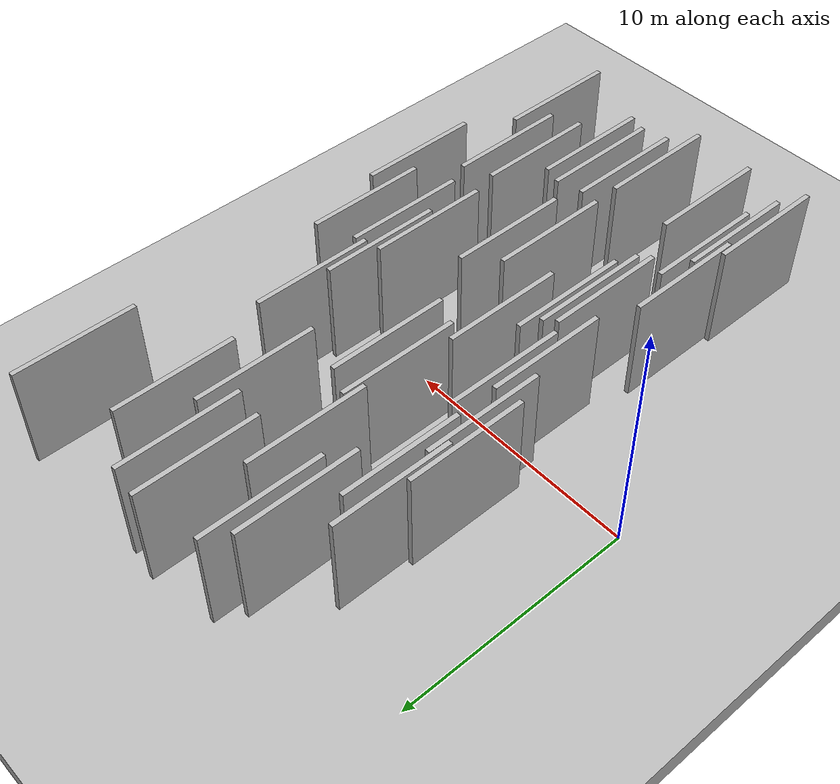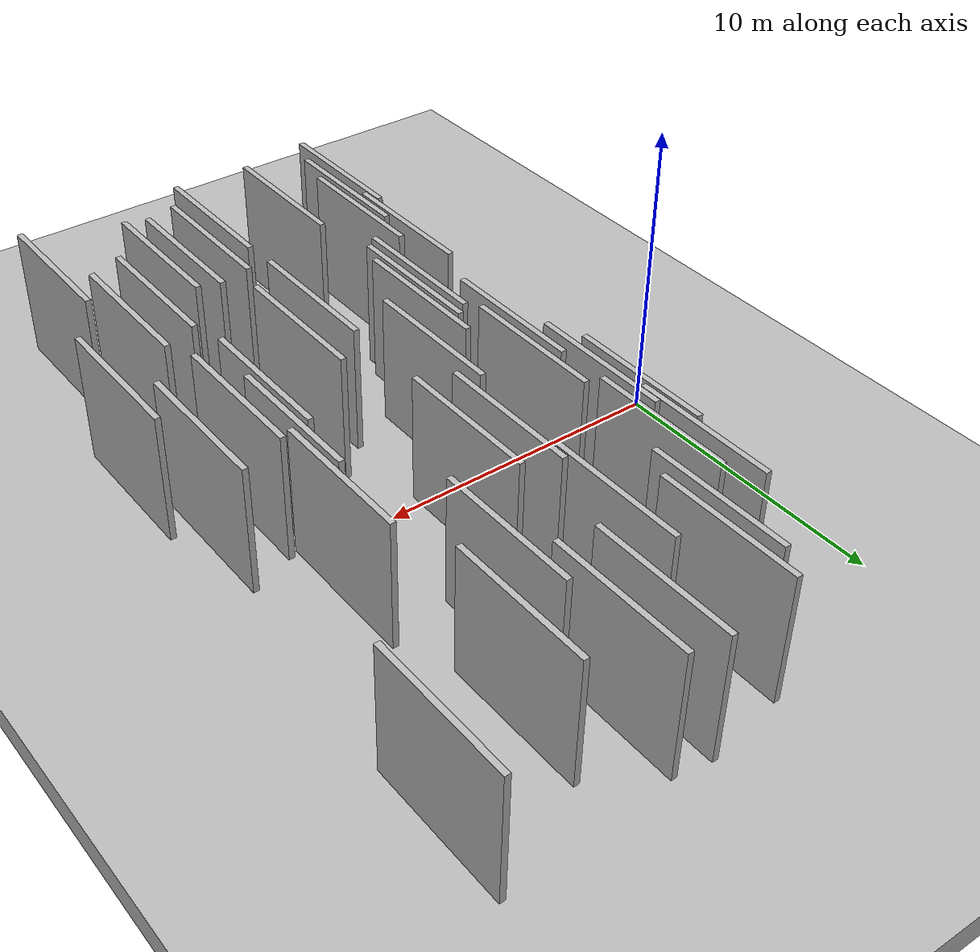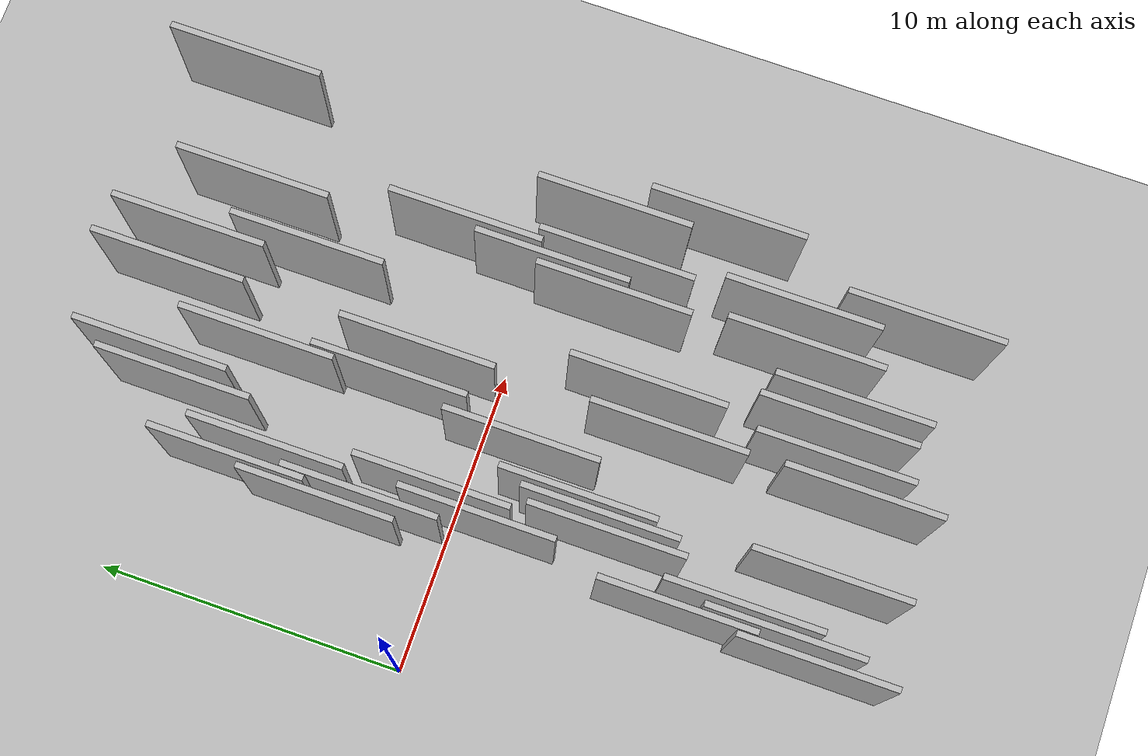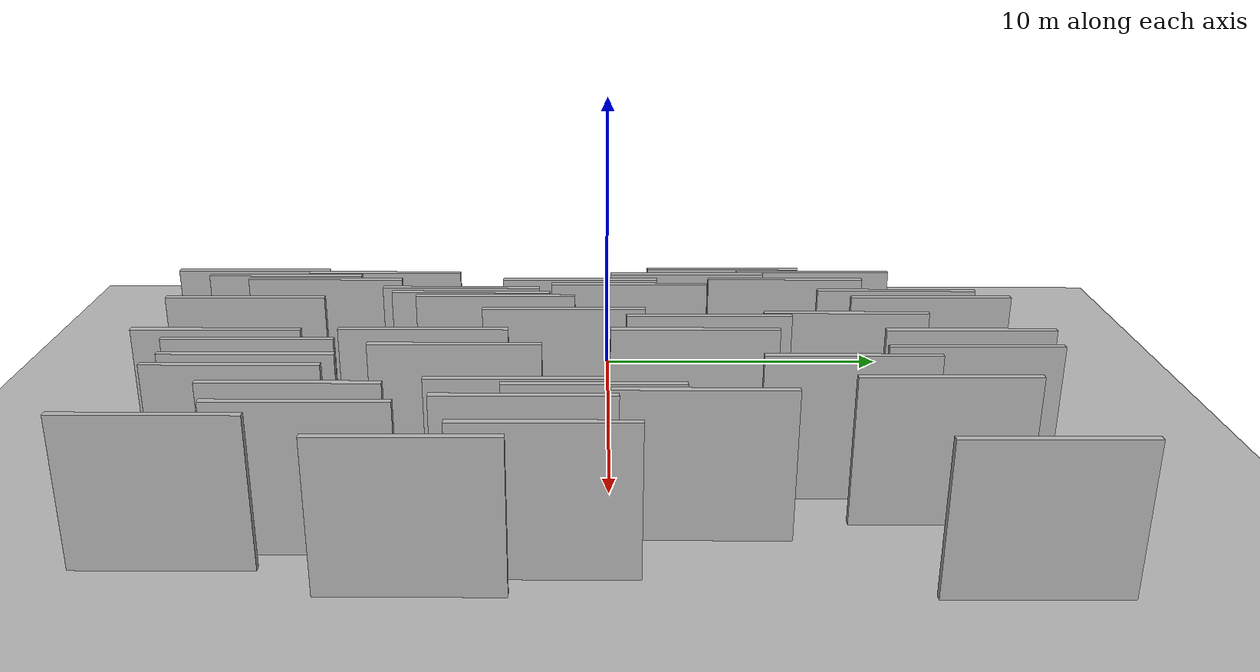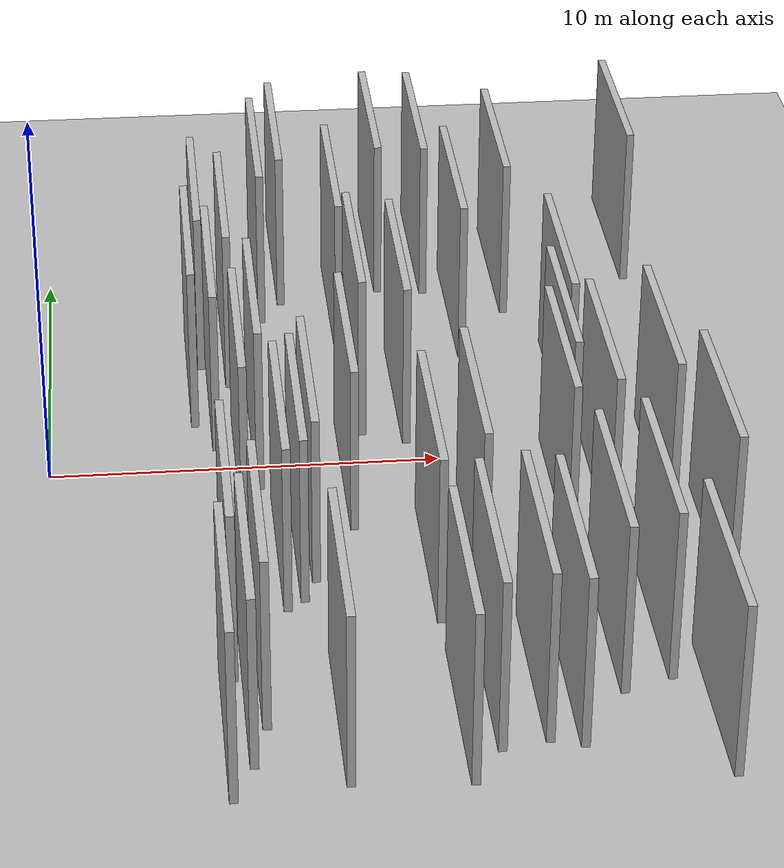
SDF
<?xml version="1.0" encoding="utf-8"?>

<sdf version="1.6">

   <world name="default">

      <gui fullscreen="0">

         <camera name="user_camera">

            <pose>-15 0 4.57585 0 0 0</pose>

            <view_controller>orbit</view_controller>

         </camera>

      </gui>

      <scene>

         <sky>

           <clouds>

             <speed>12</speed>

           </clouds>

         </sky>

         <ambient>0.4 0.4 0.4 1</ambient>

         <background>0.7 0.7 0.7 1</background>

         <shadows>1</shadows>

      </scene>

      <gravity>0 0 -9.8066</gravity>

      <magnetic_field>6e-06 2.3e-05 -4.2e-05</magnetic_field>

      <physics default="0" name="default_physics" type="ode">

         <ode>

            <solver>

               <type>quick</type>

               <iters>10</iters>

               <sor>1.0</sor>

               <use_dynamic_moi_rescaling>0</use_dynamic_moi_rescaling>

            </solver>

            <constraints>

               <cfm>0</cfm>

               <erp>0.2</erp>

               <contact_max_correcting_vel>100</contact_max_correcting_vel>

               <contact_surface_layer>0.001</contact_surface_layer>

            </constraints>

         </ode>

         <max_step_size>0.004</max_step_size>

         <real_time_factor>1</real_time_factor>

         <real_time_update_rate>250</real_time_update_rate>

      </physics>

      <light name="sun" type="directional">

         <cast_shadows>1</cast_shadows>

         <pose>0 0 10 0 0 0</pose>

         <diffuse>0.8 0.8 0.8 1</diffuse>

         <specular>0.2 0.2 0.2 1</specular>

         <attenuation>

            <range>1000</range>

            <constant>0.9</constant>

            <linear>0.01</linear>

            <quadratic>0.001</quadratic>

         </attenuation>

         <direction>-0.5 0.1 -0.9</direction>

      </light>

      <include>

         <name>ground_plane_1</name>

         <uri>model://HANNAS_ground_plane</uri>

         <pose>0 0 0  0 0 0</pose>

      </include>

      <include>

         <name>ground_plane_2</name>

         <uri>model://HANNAS_ground_plane</uri>

         <pose>100 0 0  0 0 0</pose>

      </include>

      <model name="HANNAS_wall_1">

         <static>1</static>

         <pose frame="">16.1890 10.7749 0.0 0.000000 0.000000 1.570796</pose>

         <link name="link">

            <pose frame="">0 0 2.50 0 0 0</pose>

            <collision name="collision">

               <geometry>

                  <box>

                     <size>5.00 0.2 5.00</size>

                  </box>

               </geometry>

               <max_contacts>10</max_contacts>

               <surface>

                  <contact>

                     <ode/>

                  </contact>

                  <bounce/>

                  <friction>

                     <torsional>

                        <ode/>

                     </torsional>

                     <ode/>

                  </friction>

               </surface>

            </collision>

            <visual name="visual">

               <cast_shadows>0</cast_shadows>

               <geometry>

                  <box>

                     <size>5.00 0.2 5.00</size>

                  </box>

               </geometry>

               <material>

                  <script>

                     <uri>model://HANNAS_wall/materials/scripts</uri>

                     <uri>model://HANNAS_wall/materials/textures</uri>

                     <name>vrc/HANNAS_wall</name>

                  </script>

               </material>

            </visual>

            <self_collide>0</self_collide>

            <enable_wind>0</enable_wind>

            <kinematic>0</kinematic>

         </link>

      </model>

      <model name="HANNAS_wall_2">

         <static>1</static>

         <pose frame="">4.4902 -10.6086 0.0 0.000000 0.000000 1.570796</pose>

         <link name="link">

            <pose frame="">0 0 2.50 0 0 0</pose>

            <collision name="collision">

               <geometry>

                  <box>

                     <size>5.00 0.2 5.00</size>

                  </box>

               </geometry>

               <max_contacts>10</max_contacts>

               <surface>

                  <contact>

                     <ode/>

                  </contact>

                  <bounce/>

                  <friction>

                     <torsional>

                        <ode/>

                     </torsional>

                     <ode/>

                  </friction>

               </surface>

            </collision>

            <visual name="visual">

               <cast_shadows>0</cast_shadows>

               <geometry>

                  <box>

                     <size>5.00 0.2 5.00</size>

                  </box>

               </geometry>

               <material>

                  <script>

                     <uri>model://HANNAS_wall/materials/scripts</uri>

                     <uri>model://HANNAS_wall/materials/textures</uri>

                     <name>vrc/HANNAS_wall</name>

                  </script>

               </material>

            </visual>

            <self_collide>0</self_collide>

            <enable_wind>0</enable_wind>

            <kinematic>0</kinematic>

         </link>

      </model>

      <model name="HANNAS_wall_3">

         <static>1</static>

         <pose frame="">5.2921 0.6594 0.0 0.000000 0.000000 1.570796</pose>

         <link name="link">

            <pose frame="">0 0 2.50 0 0 0</pose>

            <collision name="collision">

               <geometry>

                  <box>

                     <size>5.00 0.2 5.00</size>

                  </box>

               </geometry>

               <max_contacts>10</max_contacts>

               <surface>

                  <contact>

                     <ode/>

                  </contact>

                  <bounce/>

                  <friction>

                     <torsional>

                        <ode/>

                     </torsional>

                     <ode/>

                  </friction>

               </surface>

            </collision>

            <visual name="visual">

               <cast_shadows>0</cast_shadows>

               <geometry>

                  <box>

                     <size>5.00 0.2 5.00</size>

                  </box>

               </geometry>

               <material>

                  <script>

                     <uri>model://HANNAS_wall/materials/scripts</uri>

                     <uri>model://HANNAS_wall/materials/textures</uri>

                     <name>vrc/HANNAS_wall</name>

                  </script>

               </material>

            </visual>

            <self_collide>0</self_collide>

            <enable_wind>0</enable_wind>

            <kinematic>0</kinematic>

         </link>

      </model>

      <model name="HANNAS_wall_4">

         <static>1</static>

         <pose frame="">3.9765 -11.7565 0.0 0.000000 0.000000 1.570796</pose>

         <link name="link">

            <pose frame="">0 0 2.50 0 0 0</pose>

            <collision name="collision">

               <geometry>

                  <box>

                     <size>5.00 0.2 5.00</size>

                  </box>

               </geometry>

               <max_contacts>10</max_contacts>

               <surface>

                  <contact>

                     <ode/>

                  </contact>

                  <bounce/>

                  <friction>

                     <torsional>

                        <ode/>

                     </torsional>

                     <ode/>

                  </friction>

               </surface>

            </collision>

            <visual name="visual">

               <cast_shadows>0</cast_shadows>

               <geometry>

                  <box>

                     <size>5.00 0.2 5.00</size>

                  </box>

               </geometry>

               <material>

                  <script>

                     <uri>model://HANNAS_wall/materials/scripts</uri>

                     <uri>model://HANNAS_wall/materials/textures</uri>

                     <name>vrc/HANNAS_wall</name>

                  </script>

               </material>

            </visual>

            <self_collide>0</self_collide>

            <enable_wind>0</enable_wind>

            <kinematic>0</kinematic>

         </link>

      </model>

      <model name="HANNAS_wall_5">

         <static>1</static>

         <pose frame="">4.2835 2.5784 0.0 0.000000 0.000000 1.570796</pose>

         <link name="link">

            <pose frame="">0 0 2.50 0 0 0</pose>

            <collision name="collision">

               <geometry>

                  <box>

                     <size>5.00 0.2 5.00</size>

                  </box>

               </geometry>

               <max_contacts>10</max_contacts>

               <surface>

                  <contact>

                     <ode/>

                  </contact>

                  <bounce/>

                  <friction>

                     <torsional>

                        <ode/>

                     </torsional>

                     <ode/>

                  </friction>

               </surface>

            </collision>

            <visual name="visual">

               <cast_shadows>0</cast_shadows>

               <geometry>

                  <box>

                     <size>5.00 0.2 5.00</size>

                  </box>

               </geometry>

               <material>

                  <script>

                     <uri>model://HANNAS_wall/materials/scripts</uri>

                     <uri>model://HANNAS_wall/materials/textures</uri>

                     <name>vrc/HANNAS_wall</name>

                  </script>

               </material>

            </visual>

            <self_collide>0</self_collide>

            <enable_wind>0</enable_wind>

            <kinematic>0</kinematic>

         </link>

      </model>

      <model name="HANNAS_wall_6">

         <static>1</static>

         <pose frame="">3.7852 3.7944 0.0 0.000000 0.000000 1.570796</pose>

         <link name="link">

            <pose frame="">0 0 2.50 0 0 0</pose>

            <collision name="collision">

               <geometry>

                  <box>

                     <size>5.00 0.2 5.00</size>

                  </box>

               </geometry>

               <max_contacts>10</max_contacts>

               <surface>

                  <contact>

                     <ode/>

                  </contact>

                  <bounce/>

                  <friction>

                     <torsional>

                        <ode/>

                     </torsional>

                     <ode/>

                  </friction>

               </surface>

            </collision>

            <visual name="visual">

               <cast_shadows>0</cast_shadows>

               <geometry>

                  <box>

                     <size>5.00 0.2 5.00</size>

                  </box>

               </geometry>

               <material>

                  <script>

                     <uri>model://HANNAS_wall/materials/scripts</uri>

                     <uri>model://HANNAS_wall/materials/textures</uri>

                     <name>vrc/HANNAS_wall</name>

                  </script>

               </material>

            </visual>

            <self_collide>0</self_collide>

            <enable_wind>0</enable_wind>

            <kinematic>0</kinematic>

         </link>

      </model>

      <model name="HANNAS_wall_7">

         <static>1</static>

         <pose frame="">11.0615 -10.2280 0.0 0.000000 0.000000 1.570796</pose>

         <link name="link">

            <pose frame="">0 0 2.50 0 0 0</pose>

            <collision name="collision">

               <geometry>

                  <box>

                     <size>5.00 0.2 5.00</size>

                  </box>

               </geometry>

               <max_contacts>10</max_contacts>

               <surface>

                  <contact>

                     <ode/>

                  </contact>

                  <bounce/>

                  <friction>

                     <torsional>

                        <ode/>

                     </torsional>

                     <ode/>

                  </friction>

               </surface>

            </collision>

            <visual name="visual">

               <cast_shadows>0</cast_shadows>

               <geometry>

                  <box>

                     <size>5.00 0.2 5.00</size>

                  </box>

               </geometry>

               <material>

                  <script>

                     <uri>model://HANNAS_wall/materials/scripts</uri>

                     <uri>model://HANNAS_wall/materials/textures</uri>

                     <name>vrc/HANNAS_wall</name>

                  </script>

               </material>

            </visual>

            <self_collide>0</self_collide>

            <enable_wind>0</enable_wind>

            <kinematic>0</kinematic>

         </link>

      </model>

      <model name="HANNAS_wall_8">

         <static>1</static>

         <pose frame="">6.3820 -3.5713 0.0 0.000000 0.000000 1.570796</pose>

         <link name="link">

            <pose frame="">0 0 2.50 0 0 0</pose>

            <collision name="collision">

               <geometry>

                  <box>

                     <size>5.00 0.2 5.00</size>

                  </box>

               </geometry>

               <max_contacts>10</max_contacts>

               <surface>

                  <contact>

                     <ode/>

                  </contact>

                  <bounce/>

                  <friction>

                     <torsional>

                        <ode/>

                     </torsional>

                     <ode/>

                  </friction>

               </surface>

            </collision>

            <visual name="visual">

               <cast_shadows>0</cast_shadows>

               <geometry>

                  <box>

                     <size>5.00 0.2 5.00</size>

                  </box>

               </geometry>

               <material>

                  <script>

                     <uri>model://HANNAS_wall/materials/scripts</uri>

                     <uri>model://HANNAS_wall/materials/textures</uri>

                     <name>vrc/HANNAS_wall</name>

                  </script>

               </material>

            </visual>

            <self_collide>0</self_collide>

            <enable_wind>0</enable_wind>

            <kinematic>0</kinematic>

         </link>

      </model>

      <model name="HANNAS_wall_9">

         <static>1</static>

         <pose frame="">4.7743 5.7458 0.0 0.000000 0.000000 1.570796</pose>

         <link name="link">

            <pose frame="">0 0 2.50 0 0 0</pose>

            <collision name="collision">

               <geometry>

                  <box>

                     <size>5.00 0.2 5.00</size>

                  </box>

               </geometry>

               <max_contacts>10</max_contacts>

               <surface>

                  <contact>

                     <ode/>

                  </contact>

                  <bounce/>

                  <friction>

                     <torsional>

                        <ode/>

                     </torsional>

                     <ode/>

                  </friction>

               </surface>

            </collision>

            <visual name="visual">

               <cast_shadows>0</cast_shadows>

               <geometry>

                  <box>

                     <size>5.00 0.2 5.00</size>

                  </box>

               </geometry>

               <material>

                  <script>

                     <uri>model://HANNAS_wall/materials/scripts</uri>

                     <uri>model://HANNAS_wall/materials/textures</uri>

                     <name>vrc/HANNAS_wall</name>

                  </script>

               </material>

            </visual>

            <self_collide>0</self_collide>

            <enable_wind>0</enable_wind>

            <kinematic>0</kinematic>

         </link>

      </model>

      <model name="HANNAS_wall_10">

         <static>1</static>

         <pose frame="">9.2395 -11.5773 0.0 0.000000 0.000000 1.570796</pose>

         <link name="link">

            <pose frame="">0 0 2.50 0 0 0</pose>

            <collision name="collision">

               <geometry>

                  <box>

                     <size>5.00 0.2 5.00</size>

                  </box>

               </geometry>

               <max_contacts>10</max_contacts>

               <surface>

                  <contact>

                     <ode/>

                  </contact>

                  <bounce/>

                  <friction>

                     <torsional>

                        <ode/>

                     </torsional>

                     <ode/>

                  </friction>

               </surface>

            </collision>

            <visual name="visual">

               <cast_shadows>0</cast_shadows>

               <geometry>

                  <box>

                     <size>5.00 0.2 5.00</size>

                  </box>

               </geometry>

               <material>

                  <script>

                     <uri>model://HANNAS_wall/materials/scripts</uri>

                     <uri>model://HANNAS_wall/materials/textures</uri>

                     <name>vrc/HANNAS_wall</name>

                  </script>

               </material>

            </visual>

            <self_collide>0</self_collide>

            <enable_wind>0</enable_wind>

            <kinematic>0</kinematic>

         </link>

      </model>

      <model name="HANNAS_wall_11">

         <static>1</static>

         <pose frame="">12.5439 9.1400 0.0 0.000000 0.000000 1.570796</pose>

         <link name="link">

            <pose frame="">0 0 2.50 0 0 0</pose>

            <collision name="collision">

               <geometry>

                  <box>

                     <size>5.00 0.2 5.00</size>

                  </box>

               </geometry>

               <max_contacts>10</max_contacts>

               <surface>

                  <contact>

                     <ode/>

                  </contact>

                  <bounce/>

                  <friction>

                     <torsional>

                        <ode/>

                     </torsional>

                     <ode/>

                  </friction>

               </surface>

            </collision>

            <visual name="visual">

               <cast_shadows>0</cast_shadows>

               <geometry>

                  <box>

                     <size>5.00 0.2 5.00</size>

                  </box>

               </geometry>

               <material>

                  <script>

                     <uri>model://HANNAS_wall/materials/scripts</uri>

                     <uri>model://HANNAS_wall/materials/textures</uri>

                     <name>vrc/HANNAS_wall</name>

                  </script>

               </material>

            </visual>

            <self_collide>0</self_collide>

            <enable_wind>0</enable_wind>

            <kinematic>0</kinematic>

         </link>

      </model>

      <model name="HANNAS_wall_12">

         <static>1</static>

         <pose frame="">6.5400 -11.4147 0.0 0.000000 0.000000 1.570796</pose>

         <link name="link">

            <pose frame="">0 0 2.50 0 0 0</pose>

            <collision name="collision">

               <geometry>

                  <box>

                     <size>5.00 0.2 5.00</size>

                  </box>

               </geometry>

               <max_contacts>10</max_contacts>

               <surface>

                  <contact>

                     <ode/>

                  </contact>

                  <bounce/>

                  <friction>

                     <torsional>

                        <ode/>

                     </torsional>

                     <ode/>

                  </friction>

               </surface>

            </collision>

            <visual name="visual">

               <cast_shadows>0</cast_shadows>

               <geometry>

                  <box>

                     <size>5.00 0.2 5.00</size>

                  </box>

               </geometry>

               <material>

                  <script>

                     <uri>model://HANNAS_wall/materials/scripts</uri>

                     <uri>model://HANNAS_wall/materials/textures</uri>

                     <name>vrc/HANNAS_wall</name>

                  </script>

               </material>

            </visual>

            <self_collide>0</self_collide>

            <enable_wind>0</enable_wind>

            <kinematic>0</kinematic>

         </link>

      </model>

      <model name="HANNAS_wall_13">

         <static>1</static>

         <pose frame="">10.4301 10.4365 0.0 0.000000 0.000000 1.570796</pose>

         <link name="link">

            <pose frame="">0 0 2.50 0 0 0</pose>

            <collision name="collision">

               <geometry>

                  <box>

                     <size>5.00 0.2 5.00</size>

                  </box>

               </geometry>

               <max_contacts>10</max_contacts>

               <surface>

                  <contact>

                     <ode/>

                  </contact>

                  <bounce/>

                  <friction>

                     <torsional>

                        <ode/>

                     </torsional>

                     <ode/>

                  </friction>

               </surface>

            </collision>

            <visual name="visual">

               <cast_shadows>0</cast_shadows>

               <geometry>

                  <box>

                     <size>5.00 0.2 5.00</size>

                  </box>

               </geometry>

               <material>

                  <script>

                     <uri>model://HANNAS_wall/materials/scripts</uri>

                     <uri>model://HANNAS_wall/materials/textures</uri>

                     <name>vrc/HANNAS_wall</name>

                  </script>

               </material>

            </visual>

            <self_collide>0</self_collide>

            <enable_wind>0</enable_wind>

            <kinematic>0</kinematic>

         </link>

      </model>

      <model name="HANNAS_wall_14">

         <static>1</static>

         <pose frame="">13.7706 -2.2859 0.0 0.000000 0.000000 1.570796</pose>

         <link name="link">

            <pose frame="">0 0 2.50 0 0 0</pose>

            <collision name="collision">

               <geometry>

                  <box>

                     <size>5.00 0.2 5.00</size>

                  </box>

               </geometry>

               <max_contacts>10</max_contacts>

               <surface>

                  <contact>

                     <ode/>

                  </contact>

                  <bounce/>

                  <friction>

                     <torsional>

                        <ode/>

                     </torsional>

                     <ode/>

                  </friction>

               </surface>

            </collision>

            <visual name="visual">

               <cast_shadows>0</cast_shadows>

               <geometry>

                  <box>

                     <size>5.00 0.2 5.00</size>

                  </box>

               </geometry>

               <material>

                  <script>

                     <uri>model://HANNAS_wall/materials/scripts</uri>

                     <uri>model://HANNAS_wall/materials/textures</uri>

                     <name>vrc/HANNAS_wall</name>

                  </script>

               </material>

            </visual>

            <self_collide>0</self_collide>

            <enable_wind>0</enable_wind>

            <kinematic>0</kinematic>

         </link>

      </model>

      <model name="HANNAS_wall_15">

         <static>1</static>

         <pose frame="">13.0494 -0.4483 0.0 0.000000 0.000000 1.570796</pose>

         <link name="link">

            <pose frame="">0 0 2.50 0 0 0</pose>

            <collision name="collision">

               <geometry>

                  <box>

                     <size>5.00 0.2 5.00</size>

                  </box>

               </geometry>

               <max_contacts>10</max_contacts>

               <surface>

                  <contact>

                     <ode/>

                  </contact>

                  <bounce/>

                  <friction>

                     <torsional>

                        <ode/>

                     </torsional>

                     <ode/>

                  </friction>

               </surface>

            </collision>

            <visual name="visual">

               <cast_shadows>0</cast_shadows>

               <geometry>

                  <box>

                     <size>5.00 0.2 5.00</size>

                  </box>

               </geometry>

               <material>

                  <script>

                     <uri>model://HANNAS_wall/materials/scripts</uri>

                     <uri>model://HANNAS_wall/materials/textures</uri>

                     <name>vrc/HANNAS_wall</name>

                  </script>

               </material>

            </visual>

            <self_collide>0</self_collide>

            <enable_wind>0</enable_wind>

            <kinematic>0</kinematic>

         </link>

      </model>

      <model name="HANNAS_wall_16">

         <static>1</static>

         <pose frame="">9.1765 10.6167 0.0 0.000000 0.000000 1.570796</pose>

         <link name="link">

            <pose frame="">0 0 2.50 0 0 0</pose>

            <collision name="collision">

               <geometry>

                  <box>

                     <size>5.00 0.2 5.00</size>

                  </box>

               </geometry>

               <max_contacts>10</max_contacts>

               <surface>

                  <contact>

                     <ode/>

                  </contact>

                  <bounce/>

                  <friction>

                     <torsional>

                        <ode/>

                     </torsional>

                     <ode/>

                  </friction>

               </surface>

            </collision>

            <visual name="visual">

               <cast_shadows>0</cast_shadows>

               <geometry>

                  <box>

                     <size>5.00 0.2 5.00</size>

                  </box>

               </geometry>

               <material>

                  <script>

                     <uri>model://HANNAS_wall/materials/scripts</uri>

                     <uri>model://HANNAS_wall/materials/textures</uri>

                     <name>vrc/HANNAS_wall</name>

                  </script>

               </material>

            </visual>

            <self_collide>0</self_collide>

            <enable_wind>0</enable_wind>

            <kinematic>0</kinematic>

         </link>

      </model>

      <model name="HANNAS_wall_17">

         <static>1</static>

         <pose frame="">11.1029 6.8066 0.0 0.000000 0.000000 1.570796</pose>

         <link name="link">

            <pose frame="">0 0 2.50 0 0 0</pose>

            <collision name="collision">

               <geometry>

                  <box>

                     <size>5.00 0.2 5.00</size>

                  </box>

               </geometry>

               <max_contacts>10</max_contacts>

               <surface>

                  <contact>

                     <ode/>

                  </contact>

                  <bounce/>

                  <friction>

                     <torsional>

                        <ode/>

                     </torsional>

                     <ode/>

                  </friction>

               </surface>

            </collision>

            <visual name="visual">

               <cast_shadows>0</cast_shadows>

               <geometry>

                  <box>

                     <size>5.00 0.2 5.00</size>

                  </box>

               </geometry>

               <material>

                  <script>

                     <uri>model://HANNAS_wall/materials/scripts</uri>

                     <uri>model://HANNAS_wall/materials/textures</uri>

                     <name>vrc/HANNAS_wall</name>

                  </script>

               </material>

            </visual>

            <self_collide>0</self_collide>

            <enable_wind>0</enable_wind>

            <kinematic>0</kinematic>

         </link>

      </model>

      <model name="HANNAS_wall_18">

         <static>1</static>

         <pose frame="">13.0073 -8.5880 0.0 0.000000 0.000000 1.570796</pose>

         <link name="link">

            <pose frame="">0 0 2.50 0 0 0</pose>

            <collision name="collision">

               <geometry>

                  <box>

                     <size>5.00 0.2 5.00</size>

                  </box>

               </geometry>

               <max_contacts>10</max_contacts>

               <surface>

                  <contact>

                     <ode/>

                  </contact>

                  <bounce/>

                  <friction>

                     <torsional>

                        <ode/>

                     </torsional>

                     <ode/>

                  </friction>

               </surface>

            </collision>

            <visual name="visual">

               <cast_shadows>0</cast_shadows>

               <geometry>

                  <box>

                     <size>5.00 0.2 5.00</size>

                  </box>

               </geometry>

               <material>

                  <script>

                     <uri>model://HANNAS_wall/materials/scripts</uri>

                     <uri>model://HANNAS_wall/materials/textures</uri>

                     <name>vrc/HANNAS_wall</name>

                  </script>

               </material>

            </visual>

            <self_collide>0</self_collide>

            <enable_wind>0</enable_wind>

            <kinematic>0</kinematic>

         </link>

      </model>

      <model name="HANNAS_wall_19">

         <static>1</static>

         <pose frame="">12.7009 -2.5524 0.0 0.000000 0.000000 1.570796</pose>

         <link name="link">

            <pose frame="">0 0 2.50 0 0 0</pose>

            <collision name="collision">

               <geometry>

                  <box>

                     <size>5.00 0.2 5.00</size>

                  </box>

               </geometry>

               <max_contacts>10</max_contacts>

               <surface>

                  <contact>

                     <ode/>

                  </contact>

                  <bounce/>

                  <friction>

                     <torsional>

                        <ode/>

                     </torsional>

                     <ode/>

                  </friction>

               </surface>

            </collision>

            <visual name="visual">

               <cast_shadows>0</cast_shadows>

               <geometry>

                  <box>

                     <size>5.00 0.2 5.00</size>

                  </box>

               </geometry>

               <material>

                  <script>

                     <uri>model://HANNAS_wall/materials/scripts</uri>

                     <uri>model://HANNAS_wall/materials/textures</uri>

                     <name>vrc/HANNAS_wall</name>

                  </script>

               </material>

            </visual>

            <self_collide>0</self_collide>

            <enable_wind>0</enable_wind>

            <kinematic>0</kinematic>

         </link>

      </model>

      <model name="HANNAS_wall_20">

         <static>1</static>

         <pose frame="">9.9651 -10.4647 0.0 0.000000 0.000000 1.570796</pose>

         <link name="link">

            <pose frame="">0 0 2.50 0 0 0</pose>

            <collision name="collision">

               <geometry>

                  <box>

                     <size>5.00 0.2 5.00</size>

                  </box>

               </geometry>

               <max_contacts>10</max_contacts>

               <surface>

                  <contact>

                     <ode/>

                  </contact>

                  <bounce/>

                  <friction>

                     <torsional>

                        <ode/>

                     </torsional>

                     <ode/>

                  </friction>

               </surface>

            </collision>

            <visual name="visual">

               <cast_shadows>0</cast_shadows>

               <geometry>

                  <box>

                     <size>5.00 0.2 5.00</size>

                  </box>

               </geometry>

               <material>

                  <script>

                     <uri>model://HANNAS_wall/materials/scripts</uri>

                     <uri>model://HANNAS_wall/materials/textures</uri>

                     <name>vrc/HANNAS_wall</name>

                  </script>

               </material>

            </visual>

            <self_collide>0</self_collide>

            <enable_wind>0</enable_wind>

            <kinematic>0</kinematic>

         </link>

      </model>

      <model name="HANNAS_wall_21">

         <static>1</static>

         <pose frame="">10.3295 -4.4510 0.0 0.000000 0.000000 1.570796</pose>

         <link name="link">

            <pose frame="">0 0 2.50 0 0 0</pose>

            <collision name="collision">

               <geometry>

                  <box>

                     <size>5.00 0.2 5.00</size>

                  </box>

               </geometry>

               <max_contacts>10</max_contacts>

               <surface>

                  <contact>

                     <ode/>

                  </contact>

                  <bounce/>

                  <friction>

                     <torsional>

                        <ode/>

                     </torsional>

                     <ode/>

                  </friction>

               </surface>

            </collision>

            <visual name="visual">

               <cast_shadows>0</cast_shadows>

               <geometry>

                  <box>

                     <size>5.00 0.2 5.00</size>

                  </box>

               </geometry>

               <material>

                  <script>

                     <uri>model://HANNAS_wall/materials/scripts</uri>

                     <uri>model://HANNAS_wall/materials/textures</uri>

                     <name>vrc/HANNAS_wall</name>

                  </script>

               </material>

            </visual>

            <self_collide>0</self_collide>

            <enable_wind>0</enable_wind>

            <kinematic>0</kinematic>

         </link>

      </model>

      <model name="HANNAS_wall_22">

         <static>1</static>

         <pose frame="">14.9685 -11.7836 0.0 0.000000 0.000000 1.570796</pose>

         <link name="link">

            <pose frame="">0 0 2.50 0 0 0</pose>

            <collision name="collision">

               <geometry>

                  <box>

                     <size>5.00 0.2 5.00</size>

                  </box>

               </geometry>

               <max_contacts>10</max_contacts>

               <surface>

                  <contact>

                     <ode/>

                  </contact>

                  <bounce/>

                  <friction>

                     <torsional>

                        <ode/>

                     </torsional>

                     <ode/>

                  </friction>

               </surface>

            </collision>

            <visual name="visual">

               <cast_shadows>0</cast_shadows>

               <geometry>

                  <box>

                     <size>5.00 0.2 5.00</size>

                  </box>

               </geometry>

               <material>

                  <script>

                     <uri>model://HANNAS_wall/materials/scripts</uri>

                     <uri>model://HANNAS_wall/materials/textures</uri>

                     <name>vrc/HANNAS_wall</name>

                  </script>

               </material>

            </visual>

            <self_collide>0</self_collide>

            <enable_wind>0</enable_wind>

            <kinematic>0</kinematic>

         </link>

      </model>

      <model name="HANNAS_wall_23">

         <static>1</static>

         <pose frame="">5.8362 9.1345 0.0 0.000000 0.000000 1.570796</pose>

         <link name="link">

            <pose frame="">0 0 2.50 0 0 0</pose>

            <collision name="collision">

               <geometry>

                  <box>

                     <size>5.00 0.2 5.00</size>

                  </box>

               </geometry>

               <max_contacts>10</max_contacts>

               <surface>

                  <contact>

                     <ode/>

                  </contact>

                  <bounce/>

                  <friction>

                     <torsional>

                        <ode/>

                     </torsional>

                     <ode/>

                  </friction>

               </surface>

            </collision>

            <visual name="visual">

               <cast_shadows>0</cast_shadows>

               <geometry>

                  <box>

                     <size>5.00 0.2 5.00</size>

                  </box>

               </geometry>

               <material>

                  <script>

                     <uri>model://HANNAS_wall/materials/scripts</uri>

                     <uri>model://HANNAS_wall/materials/textures</uri>

                     <name>vrc/HANNAS_wall</name>

                  </script>

               </material>

            </visual>

            <self_collide>0</self_collide>

            <enable_wind>0</enable_wind>

            <kinematic>0</kinematic>

         </link>

      </model>

      <model name="HANNAS_wall_24">

         <static>1</static>

         <pose frame="">6.0527 -4.3754 0.0 0.000000 0.000000 1.570796</pose>

         <link name="link">

            <pose frame="">0 0 2.50 0 0 0</pose>

            <collision name="collision">

               <geometry>

                  <box>

                     <size>5.00 0.2 5.00</size>

                  </box>

               </geometry>

               <max_contacts>10</max_contacts>

               <surface>

                  <contact>

                     <ode/>

                  </contact>

                  <bounce/>

                  <friction>

                     <torsional>

                        <ode/>

                     </torsional>

                     <ode/>

                  </friction>

               </surface>

            </collision>

            <visual name="visual">

               <cast_shadows>0</cast_shadows>

               <geometry>

                  <box>

                     <size>5.00 0.2 5.00</size>

                  </box>

               </geometry>

               <material>

                  <script>

                     <uri>model://HANNAS_wall/materials/scripts</uri>

                     <uri>model://HANNAS_wall/materials/textures</uri>

                     <name>vrc/HANNAS_wall</name>

                  </script>

               </material>

            </visual>

            <self_collide>0</self_collide>

            <enable_wind>0</enable_wind>

            <kinematic>0</kinematic>

         </link>

      </model>

      <model name="HANNAS_wall_25">

         <static>1</static>

         <pose frame="">7.8155 7.2019 0.0 0.000000 0.000000 1.570796</pose>

         <link name="link">

            <pose frame="">0 0 2.50 0 0 0</pose>

            <collision name="collision">

               <geometry>

                  <box>

                     <size>5.00 0.2 5.00</size>

                  </box>

               </geometry>

               <max_contacts>10</max_contacts>

               <surface>

                  <contact>

                     <ode/>

                  </contact>

                  <bounce/>

                  <friction>

                     <torsional>

                        <ode/>

                     </torsional>

                     <ode/>

                  </friction>

               </surface>

            </collision>

            <visual name="visual">

               <cast_shadows>0</cast_shadows>

               <geometry>

                  <box>

                     <size>5.00 0.2 5.00</size>

                  </box>

               </geometry>

               <material>

                  <script>

                     <uri>model://HANNAS_wall/materials/scripts</uri>

                     <uri>model://HANNAS_wall/materials/textures</uri>

                     <name>vrc/HANNAS_wall</name>

                  </script>

               </material>

            </visual>

            <self_collide>0</self_collide>

            <enable_wind>0</enable_wind>

            <kinematic>0</kinematic>

         </link>

      </model>

      <model name="HANNAS_wall_26">

         <static>1</static>

         <pose frame="">4.2065 -7.3887 0.0 0.000000 0.000000 1.570796</pose>

         <link name="link">

            <pose frame="">0 0 2.50 0 0 0</pose>

            <collision name="collision">

               <geometry>

                  <box>

                     <size>5.00 0.2 5.00</size>

                  </box>

               </geometry>

               <max_contacts>10</max_contacts>

               <surface>

                  <contact>

                     <ode/>

                  </contact>

                  <bounce/>

                  <friction>

                     <torsional>

                        <ode/>

                     </torsional>

                     <ode/>

                  </friction>

               </surface>

            </collision>

            <visual name="visual">

               <cast_shadows>0</cast_shadows>

               <geometry>

                  <box>

                     <size>5.00 0.2 5.00</size>

                  </box>

               </geometry>

               <material>

                  <script>

                     <uri>model://HANNAS_wall/materials/scripts</uri>

                     <uri>model://HANNAS_wall/materials/textures</uri>

                     <name>vrc/HANNAS_wall</name>

                  </script>

               </material>

            </visual>

            <self_collide>0</self_collide>

            <enable_wind>0</enable_wind>

            <kinematic>0</kinematic>

         </link>

      </model>

      <model name="HANNAS_wall_27">

         <static>1</static>

         <pose frame="">11.8130 -10.4673 0.0 0.000000 0.000000 1.570796</pose>

         <link name="link">

            <pose frame="">0 0 2.50 0 0 0</pose>

            <collision name="collision">

               <geometry>

                  <box>

                     <size>5.00 0.2 5.00</size>

                  </box>

               </geometry>

               <max_contacts>10</max_contacts>

               <surface>

                  <contact>

                     <ode/>

                  </contact>

                  <bounce/>

                  <friction>

                     <torsional>

                        <ode/>

                     </torsional>

                     <ode/>

                  </friction>

               </surface>

            </collision>

            <visual name="visual">

               <cast_shadows>0</cast_shadows>

               <geometry>

                  <box>

                     <size>5.00 0.2 5.00</size>

                  </box>

               </geometry>

               <material>

                  <script>

                     <uri>model://HANNAS_wall/materials/scripts</uri>

                     <uri>model://HANNAS_wall/materials/textures</uri>

                     <name>vrc/HANNAS_wall</name>

                  </script>

               </material>

            </visual>

            <self_collide>0</self_collide>

            <enable_wind>0</enable_wind>

            <kinematic>0</kinematic>

         </link>

      </model>

      <model name="HANNAS_wall_28">

         <static>1</static>

         <pose frame="">13.4015 2.4815 0.0 0.000000 0.000000 1.570796</pose>

         <link name="link">

            <pose frame="">0 0 2.50 0 0 0</pose>

            <collision name="collision">

               <geometry>

                  <box>

                     <size>5.00 0.2 5.00</size>

                  </box>

               </geometry>

               <max_contacts>10</max_contacts>

               <surface>

                  <contact>

                     <ode/>

                  </contact>

                  <bounce/>

                  <friction>

                     <torsional>

                        <ode/>

                     </torsional>

                     <ode/>

                  </friction>

               </surface>

            </collision>

            <visual name="visual">

               <cast_shadows>0</cast_shadows>

               <geometry>

                  <box>

                     <size>5.00 0.2 5.00</size>

                  </box>

               </geometry>

               <material>

                  <script>

                     <uri>model://HANNAS_wall/materials/scripts</uri>

                     <uri>model://HANNAS_wall/materials/textures</uri>

                     <name>vrc/HANNAS_wall</name>

                  </script>

               </material>

            </visual>

            <self_collide>0</self_collide>

            <enable_wind>0</enable_wind>

            <kinematic>0</kinematic>

         </link>

      </model>

      <model name="HANNAS_wall_29">

         <static>1</static>

         <pose frame="">14.1782 -8.1457 0.0 0.000000 0.000000 1.570796</pose>

         <link name="link">

            <pose frame="">0 0 2.50 0 0 0</pose>

            <collision name="collision">

               <geometry>

                  <box>

                     <size>5.00 0.2 5.00</size>

                  </box>

               </geometry>

               <max_contacts>10</max_contacts>

               <surface>

                  <contact>

                     <ode/>

                  </contact>

                  <bounce/>

                  <friction>

                     <torsional>

                        <ode/>

                     </torsional>

                     <ode/>

                  </friction>

               </surface>

            </collision>

            <visual name="visual">

               <cast_shadows>0</cast_shadows>

               <geometry>

                  <box>

                     <size>5.00 0.2 5.00</size>

                  </box>

               </geometry>

               <material>

                  <script>

                     <uri>model://HANNAS_wall/materials/scripts</uri>

                     <uri>model://HANNAS_wall/materials/textures</uri>

                     <name>vrc/HANNAS_wall</name>

                  </script>

               </material>

            </visual>

            <self_collide>0</self_collide>

            <enable_wind>0</enable_wind>

            <kinematic>0</kinematic>

         </link>

      </model>

      <model name="HANNAS_wall_30">

         <static>1</static>

         <pose frame="">15.3384 -1.6982 0.0 0.000000 0.000000 1.570796</pose>

         <link name="link">

            <pose frame="">0 0 2.50 0 0 0</pose>

            <collision name="collision">

               <geometry>

                  <box>

                     <size>5.00 0.2 5.00</size>

                  </box>

               </geometry>

               <max_contacts>10</max_contacts>

               <surface>

                  <contact>

                     <ode/>

                  </contact>

                  <bounce/>

                  <friction>

                     <torsional>

                        <ode/>

                     </torsional>

                     <ode/>

                  </friction>

               </surface>

            </collision>

            <visual name="visual">

               <cast_shadows>0</cast_shadows>

               <geometry>

                  <box>

                     <size>5.00 0.2 5.00</size>

                  </box>

               </geometry>

               <material>

                  <script>

                     <uri>model://HANNAS_wall/materials/scripts</uri>

                     <uri>model://HANNAS_wall/materials/textures</uri>

                     <name>vrc/HANNAS_wall</name>

                  </script>

               </material>

            </visual>

            <self_collide>0</self_collide>

            <enable_wind>0</enable_wind>

            <kinematic>0</kinematic>

         </link>

      </model>

      <model name="HANNAS_wall_31">

         <static>1</static>

         <pose frame="">5.6248 -4.7272 0.0 0.000000 0.000000 1.570796</pose>

         <link name="link">

            <pose frame="">0 0 2.50 0 0 0</pose>

            <collision name="collision">

               <geometry>

                  <box>

                     <size>5.00 0.2 5.00</size>

                  </box>

               </geometry>

               <max_contacts>10</max_contacts>

               <surface>

                  <contact>

                     <ode/>

                  </contact>

                  <bounce/>

                  <friction>

                     <torsional>

                        <ode/>

                     </torsional>

                     <ode/>

                  </friction>

               </surface>

            </collision>

            <visual name="visual">

               <cast_shadows>0</cast_shadows>

               <geometry>

                  <box>

                     <size>5.00 0.2 5.00</size>

                  </box>

               </geometry>

               <material>

                  <script>

                     <uri>model://HANNAS_wall/materials/scripts</uri>

                     <uri>model://HANNAS_wall/materials/textures</uri>

                     <name>vrc/HANNAS_wall</name>

                  </script>

               </material>

            </visual>

            <self_collide>0</self_collide>

            <enable_wind>0</enable_wind>

            <kinematic>0</kinematic>

         </link>

      </model>

      <model name="HANNAS_wall_32">

         <static>1</static>

         <pose frame="">7.4906 -1.3918 0.0 0.000000 0.000000 1.570796</pose>

         <link name="link">

            <pose frame="">0 0 2.50 0 0 0</pose>

            <collision name="collision">

               <geometry>

                  <box>

                     <size>5.00 0.2 5.00</size>

                  </box>

               </geometry>

               <max_contacts>10</max_contacts>

               <surface>

                  <contact>

                     <ode/>

                  </contact>

                  <bounce/>

                  <friction>

                     <torsional>

                        <ode/>

                     </torsional>

                     <ode/>

                  </friction>

               </surface>

            </collision>

            <visual name="visual">

               <cast_shadows>0</cast_shadows>

               <geometry>

                  <box>

                     <size>5.00 0.2 5.00</size>

                  </box>

               </geometry>

               <material>

                  <script>

                     <uri>model://HANNAS_wall/materials/scripts</uri>

                     <uri>model://HANNAS_wall/materials/textures</uri>

                     <name>vrc/HANNAS_wall</name>

                  </script>

               </material>

            </visual>

            <self_collide>0</self_collide>

            <enable_wind>0</enable_wind>

            <kinematic>0</kinematic>

         </link>

      </model>

      <model name="HANNAS_wall_33">

         <static>1</static>

         <pose frame="">8.0664 3.0144 0.0 0.000000 0.000000 1.570796</pose>

         <link name="link">

            <pose frame="">0 0 2.50 0 0 0</pose>

            <collision name="collision">

               <geometry>

                  <box>

                     <size>5.00 0.2 5.00</size>

                  </box>

               </geometry>

               <max_contacts>10</max_contacts>

               <surface>

                  <contact>

                     <ode/>

                  </contact>

                  <bounce/>

                  <friction>

                     <torsional>

                        <ode/>

                     </torsional>

                     <ode/>

                  </friction>

               </surface>

            </collision>

            <visual name="visual">

               <cast_shadows>0</cast_shadows>

               <geometry>

                  <box>

                     <size>5.00 0.2 5.00</size>

                  </box>

               </geometry>

               <material>

                  <script>

                     <uri>model://HANNAS_wall/materials/scripts</uri>

                     <uri>model://HANNAS_wall/materials/textures</uri>

                     <name>vrc/HANNAS_wall</name>

                  </script>

               </material>

            </visual>

            <self_collide>0</self_collide>

            <enable_wind>0</enable_wind>

            <kinematic>0</kinematic>

         </link>

      </model>

      <model name="HANNAS_wall_34">

         <static>1</static>

         <pose frame="">16.1436 -5.1143 0.0 0.000000 0.000000 1.570796</pose>

         <link name="link">

            <pose frame="">0 0 2.50 0 0 0</pose>

            <collision name="collision">

               <geometry>

                  <box>

                     <size>5.00 0.2 5.00</size>

                  </box>

               </geometry>

               <max_contacts>10</max_contacts>

               <surface>

                  <contact>

                     <ode/>

                  </contact>

                  <bounce/>

                  <friction>

                     <torsional>

                        <ode/>

                     </torsional>

                     <ode/>

                  </friction>

               </surface>

            </collision>

            <visual name="visual">

               <cast_shadows>0</cast_shadows>

               <geometry>

                  <box>

                     <size>5.00 0.2 5.00</size>

                  </box>

               </geometry>

               <material>

                  <script>

                     <uri>model://HANNAS_wall/materials/scripts</uri>

                     <uri>model://HANNAS_wall/materials/textures</uri>

                     <name>vrc/HANNAS_wall</name>

                  </script>

               </material>

            </visual>

            <self_collide>0</self_collide>

            <enable_wind>0</enable_wind>

            <kinematic>0</kinematic>

         </link>

      </model>

      <model name="HANNAS_wall_35">

         <static>1</static>

         <pose frame="">6.4244 10.1005 0.0 0.000000 0.000000 1.570796</pose>

         <link name="link">

            <pose frame="">0 0 2.50 0 0 0</pose>

            <collision name="collision">

               <geometry>

                  <box>

                     <size>5.00 0.2 5.00</size>

                  </box>

               </geometry>

               <max_contacts>10</max_contacts>

               <surface>

                  <contact>

                     <ode/>

                  </contact>

                  <bounce/>

                  <friction>

                     <torsional>

                        <ode/>

                     </torsional>

                     <ode/>

                  </friction>

               </surface>

            </collision>

            <visual name="visual">

               <cast_shadows>0</cast_shadows>

               <geometry>

                  <box>

                     <size>5.00 0.2 5.00</size>

                  </box>

               </geometry>

               <material>

                  <script>

                     <uri>model://HANNAS_wall/materials/scripts</uri>

                     <uri>model://HANNAS_wall/materials/textures</uri>

                     <name>vrc/HANNAS_wall</name>

                  </script>

               </material>

            </visual>

            <self_collide>0</self_collide>

            <enable_wind>0</enable_wind>

            <kinematic>0</kinematic>

         </link>

      </model>

      <model name="HANNAS_wall_36">

         <static>1</static>

         <pose frame="">4.0707 6.7411 0.0 0.000000 0.000000 1.570796</pose>

         <link name="link">

            <pose frame="">0 0 2.50 0 0 0</pose>

            <collision name="collision">

               <geometry>

                  <box>

                     <size>5.00 0.2 5.00</size>

                  </box>

               </geometry>

               <max_contacts>10</max_contacts>

               <surface>

                  <contact>

                     <ode/>

                  </contact>

                  <bounce/>

                  <friction>

                     <torsional>

                        <ode/>

                     </torsional>

                     <ode/>

                  </friction>

               </surface>

            </collision>

            <visual name="visual">

               <cast_shadows>0</cast_shadows>

               <geometry>

                  <box>

                     <size>5.00 0.2 5.00</size>

                  </box>

               </geometry>

               <material>

                  <script>

                     <uri>model://HANNAS_wall/materials/scripts</uri>

                     <uri>model://HANNAS_wall/materials/textures</uri>

                     <name>vrc/HANNAS_wall</name>

                  </script>

               </material>

            </visual>

            <self_collide>0</self_collide>

            <enable_wind>0</enable_wind>

            <kinematic>0</kinematic>

         </link>

      </model>

      <model name="HANNAS_wall_37">

         <static>1</static>

         <pose frame="">4.8304 -0.9244 0.0 0.000000 0.000000 1.570796</pose>

         <link name="link">

            <pose frame="">0 0 2.50 0 0 0</pose>

            <collision name="collision">

               <geometry>

                  <box>

                     <size>5.00 0.2 5.00</size>

                  </box>

               </geometry>

               <max_contacts>10</max_contacts>

               <surface>

                  <contact>

                     <ode/>

                  </contact>

                  <bounce/>

                  <friction>

                     <torsional>

                        <ode/>

                     </torsional>

                     <ode/>

                  </friction>

               </surface>

            </collision>

            <visual name="visual">

               <cast_shadows>0</cast_shadows>

               <geometry>

                  <box>

                     <size>5.00 0.2 5.00</size>

                  </box>

               </geometry>

               <material>

                  <script>

                     <uri>model://HANNAS_wall/materials/scripts</uri>

                     <uri>model://HANNAS_wall/materials/textures</uri>

                     <name>vrc/HANNAS_wall</name>

                  </script>

               </material>

            </visual>

            <self_collide>0</self_collide>

            <enable_wind>0</enable_wind>

            <kinematic>0</kinematic>

         </link>

      </model>

      <model name="HANNAS_wall_38">

         <static>1</static>

         <pose frame="">9.1624 2.5200 0.0 0.000000 0.000000 1.570796</pose>

         <link name="link">

            <pose frame="">0 0 2.50 0 0 0</pose>

            <collision name="collision">

               <geometry>

                  <box>

                     <size>5.00 0.2 5.00</size>

                  </box>

               </geometry>

               <max_contacts>10</max_contacts>

               <surface>

                  <contact>

                     <ode/>

                  </contact>

                  <bounce/>

                  <friction>

                     <torsional>

                        <ode/>

                     </torsional>

                     <ode/>

                  </friction>

               </surface>

            </collision>

            <visual name="visual">

               <cast_shadows>0</cast_shadows>

               <geometry>

                  <box>

                     <size>5.00 0.2 5.00</size>

                  </box>

               </geometry>

               <material>

                  <script>

                     <uri>model://HANNAS_wall/materials/scripts</uri>

                     <uri>model://HANNAS_wall/materials/textures</uri>

                     <name>vrc/HANNAS_wall</name>

                  </script>

               </material>

            </visual>

            <self_collide>0</self_collide>

            <enable_wind>0</enable_wind>

            <kinematic>0</kinematic>

         </link>

      </model>

      <model name="HANNAS_wall_39">

         <static>1</static>

         <pose frame="">4.8498 -9.2319 0.0 0.000000 0.000000 1.570796</pose>

         <link name="link">

            <pose frame="">0 0 2.50 0 0 0</pose>

            <collision name="collision">

               <geometry>

                  <box>

                     <size>5.00 0.2 5.00</size>

                  </box>

               </geometry>

               <max_contacts>10</max_contacts>

               <surface>

                  <contact>

                     <ode/>

                  </contact>

                  <bounce/>

                  <friction>

                     <torsional>

                        <ode/>

                     </torsional>

                     <ode/>

                  </friction>

               </surface>

            </collision>

            <visual name="visual">

               <cast_shadows>0</cast_shadows>

               <geometry>

                  <box>

                     <size>5.00 0.2 5.00</size>

                  </box>

               </geometry>

               <material>

                  <script>

                     <uri>model://HANNAS_wall/materials/scripts</uri>

                     <uri>model://HANNAS_wall/materials/textures</uri>

                     <name>vrc/HANNAS_wall</name>

                  </script>

               </material>

            </visual>

            <self_collide>0</self_collide>

            <enable_wind>0</enable_wind>

            <kinematic>0</kinematic>

         </link>

      </model>

      <model name="HANNAS_wall_40">

         <static>1</static>

         <pose frame="">9.1750 -5.4936 0.0 0.000000 0.000000 1.570796</pose>

         <link name="link">

            <pose frame="">0 0 2.50 0 0 0</pose>

            <collision name="collision">

               <geometry>

                  <box>

                     <size>5.00 0.2 5.00</size>

                  </box>

               </geometry>

               <max_contacts>10</max_contacts>

               <surface>

                  <contact>

                     <ode/>

                  </contact>

                  <bounce/>

                  <friction>

                     <torsional>

                        <ode/>

                     </torsional>

                     <ode/>

                  </friction>

               </surface>

            </collision>

            <visual name="visual">

               <cast_shadows>0</cast_shadows>

               <geometry>

                  <box>

                     <size>5.00 0.2 5.00</size>

                  </box>

               </geometry>

               <material>

                  <script>

                     <uri>model://HANNAS_wall/materials/scripts</uri>

                     <uri>model://HANNAS_wall/materials/textures</uri>

                     <name>vrc/HANNAS_wall</name>

                  </script>

               </material>

            </visual>

            <self_collide>0</self_collide>

            <enable_wind>0</enable_wind>

            <kinematic>0</kinematic>

         </link>

      </model>

   </world>

</sdf>
